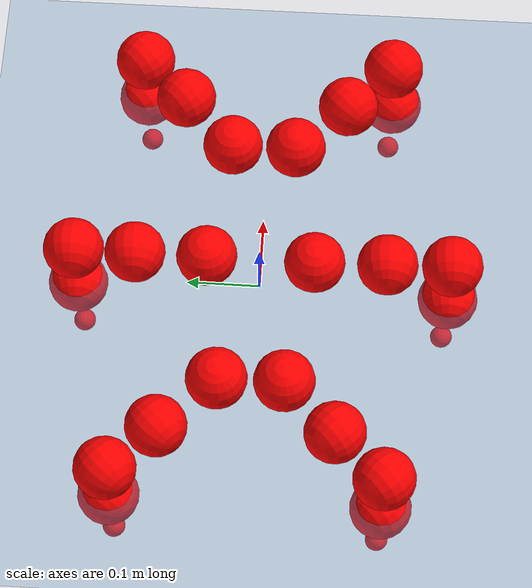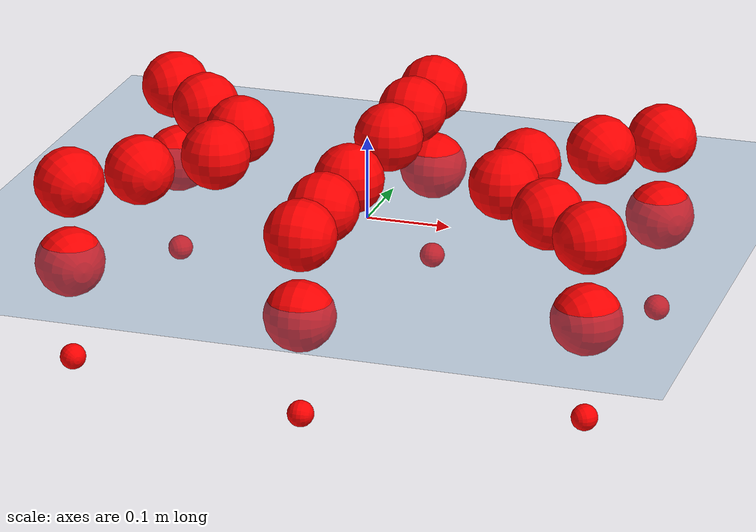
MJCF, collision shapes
<mujoco model="Golem">
  <compiler angle="radian" assetdir="assets" balanceinertia="true" inertiafromgeom="false"/>

  <option timestep="0.005" density="1.2" viscosity="2e-05"/>

  <size nkey="1"/>

  <visual>
    <quality shadowsize="8192"/>
    <map shadowclip="0.5"/>
  </visual>

  <default>
    <default class="/">
      <joint armature="0.01" damping="0.01" frictionloss="0.01"/>
      <geom contype="0" conaffinity="0" group="1" solref="-1000 -80"/>
      <site size="0.01 0.005 0.005" group="5"/>
      <general forcelimited="true" biastype="affine" gainprm="25" biasprm="0 -25 -0.5"/>
      <default class="visual">
        <geom type="mesh" group="2"/>
      </default>
      <default class="collision">
        <geom group="3"/>
      </default>
      <default class="foot">
        <geom size="0.01 0 0" condim="6" group="4" priority="1" solimp="0.015 1 0.01"/>
      </default>
      <default class="reward_collision_sphere">
        <geom group="5" rgba="1 0 0 1"/>
      </default>
    </default>
  </default>

  <asset>
    <texture type="skybox" colorspace="auto" name="//unnamed_texture_0" builtin="gradient" rgb1="0.95 0.95 0.95" rgb2="0.95 0.95 0.95" width="100" height="600"/>
    <texture type="2d" colorspace="auto" name="texplane" builtin="checker" rgb1="0.345 0.575 0.748" rgb2="0.345 0.575 0.748" markrgb="1 1 1" width="512" height="512"/>
    <material name="MatPlane" class="/" texture="texplane" texuniform="true" texrepeat="2 2" specular="0.9"/>
    <mesh name="body" class="/" file="body.stl" scale="0.001 0.001 0.001"/>
    <mesh name="coxa" class="/" file="coxa.stl" scale="0.001 0.001 0.001"/>
    <mesh name="femur" class="/" file="femur.stl" scale="0.001 0.001 0.001"/>
    <mesh name="tibia" class="/" file="tibia.stl" scale="0.001 0.001 0.001"/>
    <mesh name="tarsus" class="/" file="tarsus.stl" scale="0.001 0.001 0.001"/>
  </asset>

  <worldbody>
    <geom name="floor" class="/" size="100 100 0.125" type="plane" group="0" material="MatPlane"/>
    <light name="toplight_shadow" class="/" pos="0 0 5" dir="0.0990148 0.0990148 -0.990148" type="directional" ambient="0.04 0.04 0.04" diffuse="0.55 0.55 0.55" specular="0.12 0.12 0.12"/>
    <light name="toplight_fill" class="/" pos="0 0 5" dir="0.0990148 0.0990148 -0.990148" type="directional" castshadow="false" ambient="0.04 0.04 0.04" diffuse="0.3 0.3 0.3" specular="0.08 0.08 0.08"/>
    <body name="trunk" pos="0.00240022 0.000343252 -1.77647e-05" quat="1 5.56947e-05 1.97751e-05 -5.22359e-06">
      <inertial pos="-0.000555541 -0.000678937 -0.00209517" quat="0.999999 -0.000112825 0.000503766 -0.00102695" mass="3.95386" diaginertia="0.0166652 0.00323775 0.0220631"/>
      <joint name="//unnamed_joint_0" type="free"/>
      <geom name="//unnamed_geom_1" class="/" pos="0 0 0.075039" quat="1 0 0 0" type="mesh" rgba="0.9 0.9 0.9 1" mesh="body"/>
      <site name="imu" class="/" pos="0.155778 0.010326 0.112026" size="0.0102969"/>
      <camera name="track" class="/" pos="0 -1.60569 0" quat="0.707107 0.707107 0 0" mode="trackcom"/>
      <camera name="ego_camera" class="/" pos="0.144784 0 0.117248" quat="-0.5 -0.5 0.5 0.5"/>
      <body name="coxa_RR" pos="-0.199084 -0.0662578 0.0742642" quat="0.382595 3.89638e-05 7.19049e-05 -0.923916">
        <inertial pos="0.000308474 -0.00245768 0.00119907" quat="0.999985 0.00282571 -0.00252599 0.00398321" mass="0.209921" diaginertia="0.0167968 0.00326464 0.0216076"/>
        <joint name="coxa_joint_RR" class="/" pos="0 0 0" axis="-0.00271691 -0.00568769 -0.99998" range="-3.14232 3.13518" armature="0.00942423" damping="0" frictionloss="0.0102463"/>
        <geom name="//unnamed_geom_2" class="/" type="mesh" rgba="0.2 0.2 0.2 1" mesh="coxa"/>
        <geom name="//unnamed_geom_3" class="reward_collision_sphere" size="0.0411874" pos="-0.0334118 0 0"/>
        <body name="femur_RR" pos="0.0640295 0.000452609 -0.00169447" quat="0.499944 -0.499862 0.5 0.500194">
          <inertial pos="0.000364082 0.000776311 -9.68695e-06" quat="0.999986 0.00200045 -0.000812685 0.00475655" mass="0.217399" diaginertia="0.0170837 0.00327843 0.0227744"/>
          <joint name="femur_joint_RR" class="/" pos="0 0 0" axis="-0.000801867 0.00620323 -0.99998" range="-3.18005 3.11827" armature="0.0107997" damping="0.00379776" frictionloss="0.0112317"/>
          <geom name="//unnamed_geom_4" class="/" type="mesh" rgba="0.9 0.9 0.9 1" mesh="femur"/>
          <geom name="//unnamed_geom_5" class="reward_collision_sphere" size="0.0411874"/>
          <body name="tibia_RR" pos="-0.00174635 -0.0896944 0.00288018" quat="-0.000802167 0.999999 -0.000799616 -0.000184665">
            <inertial pos="-0.00199326 0.000913934 -0.000413597" quat="1 -0.000462713 -0.000477129 0.000258991" mass="0.221399" diaginertia="0.0169709 0.00336112 0.0218914"/>
            <joint name="tibia_joint_RR" class="/" pos="0 0 0" axis="0.00496174 -0.00664833 0.999966" stiffness="4.83653e-05" range="-3.15089 3.14847" armature="0.0104684" damping="0.00230308" frictionloss="0.010261"/>
            <geom name="//unnamed_geom_6" class="/" type="mesh" rgba="0.2 0.2 0.2 1" mesh="tibia"/>
            <geom name="//unnamed_geom_7" class="reward_collision_sphere" size="0.0411874"/>
            <body name="tarsus_RR" pos="0.0989983 0.00107841 0.0016149" quat="1 -2.07285e-05 -1.90823e-06 -2.14395e-05">
              <inertial pos="0.0698104 0.000669463 -0.000457962" quat="0.50332 0.498515 0.497013 0.501128" mass="0.216405" diaginertia="0.0168833 0.00330849 0.0219811"/>
              <joint name="tarsus_joint_RR" class="/" pos="0 0 0" axis="-0.000307091 -0.000202011 1" range="-3.17822 3.15256" armature="0.0108122" damping="0.0384746" frictionloss="0.010484"/>
              <geom name="//unnamed_geom_8" class="/" type="mesh" rgba="0.9 0.9 0.9 1" mesh="tarsus"/>
              <geom name="foot_1" class="foot" size="0.0101787" pos="0.124737 0 0" quat="0 -0.707107 0 0.707107"/>
              <geom name="//unnamed_geom_10" class="reward_collision_sphere" size="0.0411874"/>
              <geom name="//unnamed_geom_11" class="reward_collision_sphere" size="0.0154453" pos="0.119726 0 0"/>
              <site name="foot_1" class="foot" pos="0.124737 0 0" quat="0 -0.707107 0 0.707107" size="0.0102969"/>
            </body>
          </body>
        </body>
      </body>
      <body name="coxa_RM" pos="-0.000807202 -0.107918 0.0760446" quat="0.707287 0.000214663 -3.2204e-05 -0.706926">
        <inertial pos="0.00137844 0.000103787 0.00112568" quat="0.999997 -0.00115662 0.00184532 0.00137614" mass="0.21948" diaginertia="0.01711 0.00322468 0.0223403"/>
        <joint name="coxa_joint_RM" class="/" pos="0 0 0" axis="0.000308333 3.24828e-05 -1" range="-3.12094 3.13057" armature="0.0104354" damping="0.00318902" frictionloss="0.00897334"/>
        <geom name="//unnamed_geom_12" class="/" type="mesh" rgba="0.2 0.2 0.2 1" mesh="coxa"/>
        <geom name="//unnamed_geom_13" class="reward_collision_sphere" size="0.0411874" pos="-0.0334118 0 0"/>
        <body name="femur_RM" pos="0.0643412 0.00128342 0.00105089" quat="0.49905 -0.500034 0.500383 0.500532">
          <inertial pos="-0.000871699 0.000532273 -0.000137867" quat="0.999988 -0.00268755 0.00135765 0.00380399" mass="0.224019" diaginertia="0.0176565 0.00336677 0.0227575"/>
          <joint name="femur_joint_RM" class="/" pos="0 0 0" axis="-2.66211e-05 0.00116506 -0.999999" range="-3.13003 3.13426" armature="0.010504" damping="0.0152146" frictionloss="0.0103469"/>
          <geom name="//unnamed_geom_14" class="/" type="mesh" rgba="0.9 0.9 0.9 1" mesh="femur"/>
          <geom name="//unnamed_geom_15" class="reward_collision_sphere" size="0.0411874"/>
          <body name="tibia_RM" pos="-0.000178083 -0.0868678 0.00205508" quat="0.000121075 1 -4.28963e-05 -2.42163e-05">
            <inertial pos="0.00100321 -0.00266091 0.000329494" quat="0.999944 0.00850973 -0.00232389 -0.00590094" mass="0.215269" diaginertia="0.0173771 0.00348041 0.0224922"/>
            <joint name="tibia_joint_RM" class="/" pos="0 0 0" axis="0.00323275 0.000405502 0.999995" range="-3.18243 3.19034" armature="0.0102925" damping="0.0149361" frictionloss="0.00985047"/>
            <geom name="//unnamed_geom_16" class="/" type="mesh" rgba="0.2 0.2 0.2 1" mesh="tibia"/>
            <geom name="//unnamed_geom_17" class="reward_collision_sphere" size="0.0411874"/>
            <body name="tarsus_RM" pos="0.0968962 0.000465926 0.00125881" quat="1 9.95053e-06 -3.32064e-05 3.71192e-05">
              <inertial pos="0.0658223 -0.000315304 0.00166647" quat="0.49149 0.498894 0.508774 0.500691" mass="0.225426" diaginertia="0.016726 0.0033257 0.0217688"/>
              <joint name="tarsus_joint_RM" class="/" pos="0 0 0" axis="0.00141124 -0.00170779 0.999998" range="-3.12665 3.15868" armature="0.0099805" damping="0.00352109" frictionloss="0.010469"/>
              <geom name="//unnamed_geom_18" class="/" type="mesh" rgba="0.9 0.9 0.9 1" mesh="tarsus"/>
              <geom name="foot_2" class="foot" size="0.00993113" pos="0.124737 0 0" quat="0 -0.707107 0 0.707107"/>
              <geom name="//unnamed_geom_20" class="reward_collision_sphere" size="0.0411874"/>
              <geom name="//unnamed_geom_21" class="reward_collision_sphere" size="0.0154453" pos="0.119726 0 0"/>
              <site name="foot_2" class="foot" pos="0.124737 0 0" quat="0 -0.707107 0 0.707107" size="0.0102969"/>
            </body>
          </body>
        </body>
      </body>
      <body name="coxa_RF" pos="0.198186 -0.0643221 0.0776042" quat="0.923908 6.87677e-05 4.98617e-05 -0.382614">
        <inertial pos="0.00109774 9.2995e-05 0.00074113" quat="1 0.00031345 -0.000411236 -5.27477e-05" mass="0.217603" diaginertia="0.0170828 0.00328908 0.0223097"/>
        <joint name="coxa_joint_RF" class="/" pos="0 0 0" axis="0.00141966 -0.00419278 -0.99999" range="-3.13181 3.11949" armature="0.0112626" damping="0.00685036" frictionloss="0.0105814"/>
        <geom name="//unnamed_geom_22" class="/" type="mesh" rgba="0.2 0.2 0.2 1" mesh="coxa"/>
        <geom name="//unnamed_geom_23" class="reward_collision_sphere" size="0.0411874" pos="-0.0334118 0 0"/>
        <body name="femur_RF" pos="0.0660828 0.000948549 -0.00215369" quat="0.500072 -0.500054 0.50024 0.499634">
          <inertial pos="-0.00060862 -0.000882552 0.000550002" quat="0.999995 -0.00114108 0.000228077 -0.00310472" mass="0.219237" diaginertia="0.0171341 0.00333275 0.0229007"/>
          <joint name="femur_joint_RF" class="/" pos="0 0 0" axis="4.87622e-05 -0.00020413 -1" range="-3.18869 3.11718" armature="0.00920708" damping="0.0114451" frictionloss="0.0110719"/>
          <geom name="//unnamed_geom_24" class="/" type="mesh" rgba="0.9 0.9 0.9 1" mesh="femur"/>
          <geom name="//unnamed_geom_25" class="reward_collision_sphere" size="0.0411874"/>
          <body name="tibia_RF" pos="-0.00214665 -0.0880326 0.00209722" quat="0.000226832 1 -7.81194e-05 2.2227e-05">
            <inertial pos="-0.00236977 -0.000326766 0.000796752" quat="1 2.5285e-05 2.43418e-05 0.000249126" mass="0.222359" diaginertia="0.0168963 0.00332675 0.0220958"/>
            <joint name="tibia_joint_RF" class="/" pos="0 0 0" axis="-0.0097566 -0.00463221 0.999942" range="-3.11959 3.08866" armature="0.0107287" damping="0.0141443" frictionloss="0.0102443"/>
            <geom name="//unnamed_geom_26" class="/" type="mesh" rgba="0.2 0.2 0.2 1" mesh="tibia"/>
            <geom name="//unnamed_geom_27" class="reward_collision_sphere" size="0.0411874"/>
            <body name="tarsus_RF" pos="0.0963322 0.00205231 0.00234521" quat="0.999999 -0.000534705 0.00109209 -9.15256e-05">
              <inertial pos="0.0668799 -0.000638108 -0.000131755" quat="0.500808 0.49843 0.500758 0.5" mass="0.217462" diaginertia="0.0170529 0.00336855 0.0222645"/>
              <joint name="tarsus_joint_RF" class="/" pos="0 0 0" axis="0.00250402 0.00576834 0.99998" range="-3.12336 3.15715" armature="0.0105026" damping="0.00393209" frictionloss="0.0104022"/>
              <geom name="//unnamed_geom_28" class="/" type="mesh" rgba="0.9 0.9 0.9 1" mesh="tarsus"/>
              <geom name="foot_3" class="foot" size="0.0107599" pos="0.124737 0 0" quat="0 -0.707107 0 0.707107"/>
              <geom name="//unnamed_geom_30" class="reward_collision_sphere" size="0.0411874"/>
              <geom name="//unnamed_geom_31" class="reward_collision_sphere" size="0.0154453" pos="0.119726 0 0"/>
              <site name="foot_3" class="foot" pos="0.124737 0 0" quat="0 -0.707107 0 0.707107" size="0.0102969"/>
            </body>
          </body>
        </body>
      </body>
      <body name="coxa_LR" pos="-0.200232 0.0699133 0.074341" quat="0.382652 -4.25435e-05 -9.90368e-05 0.923893">
        <inertial pos="-0.00212286 -0.0005628 -0.00179587" quat="0.999923 0.00661901 -0.0104157 -0.00103431" mass="0.219028" diaginertia="0.0174327 0.00349368 0.0221975"/>
        <joint name="coxa_joint_LR" class="/" pos="0 0 0" axis="0.0103745 -0.0110806 -0.999885" range="-3.11837 3.14092" armature="0.0101475" damping="0.0190332" frictionloss="0.00945005"/>
        <geom name="//unnamed_geom_32" class="/" type="mesh" rgba="0.2 0.2 0.2 1" mesh="coxa"/>
        <geom name="//unnamed_geom_33" class="reward_collision_sphere" size="0.0411874" pos="-0.0334118 0 0"/>
        <body name="femur_LR" pos="0.0685748 -0.00248559 -0.00269969" quat="0.499913 -0.500065 0.499973 0.500049">
          <inertial pos="0.000623447 0.000270715 -0.000597239" quat="1 -0.000427014 6.22288e-05 8.31562e-05" mass="0.218647" diaginertia="0.0170627 0.00340602 0.0220103"/>
          <joint name="femur_joint_LR" class="/" pos="0 0 0" axis="0.000884028 -0.00349614 0.999993" range="-3.16088 3.12796" armature="0.0098978" damping="0.0112756" frictionloss="0.00899458"/>
          <geom name="//unnamed_geom_34" class="/" type="mesh" rgba="0.9 0.9 0.9 1" mesh="femur"/>
          <geom name="//unnamed_geom_35" class="reward_collision_sphere" size="0.0411874"/>
          <body name="tibia_LR" pos="-0.000478109 -0.0870753 0.000860241" quat="0.000890373 0.999999 -0.000271381 0.000694038">
            <inertial pos="0.000164872 0.000720791 7.32132e-05" quat="0.999999 0.00020936 -0.000785123 -0.00129134" mass="0.214857" diaginertia="0.0171897 0.00336798 0.0220314"/>
            <joint name="tibia_joint_LR" class="/" pos="0 0 0" axis="0.000688647 -0.00229362 -0.999997" range="-3.13704 3.10698" armature="0.0100565" damping="0.0105391" frictionloss="0.0105745"/>
            <geom name="//unnamed_geom_36" class="/" type="mesh" rgba="0.2 0.2 0.2 1" mesh="tibia"/>
            <geom name="//unnamed_geom_37" class="reward_collision_sphere" size="0.0411874"/>
            <body name="tarsus_LR" pos="0.0971475 -0.00053934 0.00245035" quat="0.999999 -0.000781781 -0.000411564 -0.000889209">
              <inertial pos="0.0702692 0.000391024 -0.00235657" quat="0.49926 0.500907 0.499901 0.499931" mass="0.213746" diaginertia="0.0168734 0.0032422 0.0217237"/>
              <joint name="tarsus_joint_LR" class="/" pos="0 0 0" axis="0.00522554 0.0038939 -0.999979" stiffness="0.000136693" range="-3.17692 3.10153" armature="0.0105102" damping="0" frictionloss="0.00979651"/>
              <geom name="//unnamed_geom_38" class="/" type="mesh" rgba="0.9 0.9 0.9 1" mesh="tarsus"/>
              <geom name="foot_4" class="foot" size="0.0103874" pos="0.124737 0 0" quat="0.707107 0 -0.707107 0"/>
              <geom name="//unnamed_geom_40" class="reward_collision_sphere" size="0.0411874"/>
              <geom name="//unnamed_geom_41" class="reward_collision_sphere" size="0.0154453" pos="0.119726 0 0"/>
              <site name="foot_4" class="foot" pos="0.124737 0 0" quat="0.707107 0 -0.707107 0" size="0.0102969"/>
            </body>
          </body>
        </body>
      </body>
      <body name="coxa_LM" pos="0.00119133 0.104095 0.0766526" quat="0.707097 -2.90306e-05 -1.25381e-05 0.707117">
        <inertial pos="-0.000791055 0.000918497 0.000969922" quat="0.999994 0.00067733 0.00237848 -0.00241116" mass="0.220813" diaginertia="0.0173348 0.00337957 0.0224163"/>
        <joint name="coxa_joint_LM" class="/" pos="0 0 0" axis="-0.000794607 0.00122334 -0.999999" range="-3.10227 3.14926" armature="0.0100883" damping="0.00448987" frictionloss="0.0111267"/>
        <geom name="//unnamed_geom_42" class="/" type="mesh" rgba="0.2 0.2 0.2 1" mesh="coxa"/>
        <geom name="//unnamed_geom_43" class="reward_collision_sphere" size="0.0411874" pos="-0.0334118 0 0"/>
        <body name="femur_LM" pos="0.063131 0.000374896 0.000997537" quat="0.500136 -0.500004 0.499695 0.500164">
          <inertial pos="-0.000474839 -0.00208214 0.00254598" quat="0.999929 0.00776364 -0.0072027 -0.00549368" mass="0.215452" diaginertia="0.0168933 0.00318722 0.0216314"/>
          <joint name="femur_joint_LM" class="/" pos="0 0 0" axis="-0.00664825 0.000152172 0.999978" range="-3.13858 3.10599" armature="0.0104088" damping="0.00554077" frictionloss="0.0102801"/>
          <geom name="//unnamed_geom_44" class="/" type="mesh" rgba="0.9 0.9 0.9 1" mesh="femur"/>
          <geom name="//unnamed_geom_45" class="reward_collision_sphere" size="0.0411874"/>
          <body name="tibia_LM" pos="0.000803976 -0.0829634 -0.00149537" quat="0.000556245 0.999999 -0.000227743 0.00122925">
            <inertial pos="-0.000677115 -0.0033045 -0.00100036" quat="0.999992 -0.00175259 0.00320306 -0.00136559" mass="0.221068" diaginertia="0.0169331 0.00342773 0.0218957"/>
            <joint name="tibia_joint_LM" class="/" pos="0 0 0" axis="0.00203036 0.00480828 -0.999986" range="-3.1459 3.11881" armature="0.0113192" damping="0" frictionloss="0.0103184"/>
            <geom name="//unnamed_geom_46" class="/" type="mesh" rgba="0.2 0.2 0.2 1" mesh="tibia"/>
            <geom name="//unnamed_geom_47" class="reward_collision_sphere" size="0.0411874"/>
            <body name="tarsus_LM" pos="0.100445 0.000580789 7.08377e-05" quat="0.999999 0.00047682 -0.000723813 -0.000948693">
              <inertial pos="0.0660566 0.00041394 9.17486e-05" quat="0.500136 0.500062 0.499958 0.499844" mass="0.213824" diaginertia="0.016761 0.00326123 0.0218012"/>
              <joint name="tarsus_joint_LM" class="/" pos="0 0 0" axis="-1.90001e-05 -0.00127504 -0.999999" range="-3.08827 3.1204" armature="0.0113751" damping="0" frictionloss="0.0098912"/>
              <geom name="//unnamed_geom_48" class="/" type="mesh" rgba="0.9 0.9 0.9 1" mesh="tarsus"/>
              <geom name="foot_5" class="foot" size="0.010046" pos="0.124737 0 0" quat="0.707107 0 -0.707107 0"/>
              <geom name="//unnamed_geom_50" class="reward_collision_sphere" size="0.0411874"/>
              <geom name="//unnamed_geom_51" class="reward_collision_sphere" size="0.0154453" pos="0.119726 0 0"/>
              <site name="foot_5" class="foot" pos="0.124737 0 0" quat="0.707107 0 -0.707107 0" size="0.0102969"/>
            </body>
          </body>
        </body>
      </body>
      <body name="coxa_LF" pos="0.200666 0.0697751 0.0724442" quat="0.923901 -8.44943e-06 3.54108e-05 0.382631">
        <inertial pos="-0.000158512 0.000634139 0.00107545" quat="0.999988 -0.000327824 0.00462345 -0.00178819" mass="0.211062" diaginertia="0.0167236 0.00321965 0.0214977"/>
        <joint name="coxa_joint_LF" class="/" pos="0 0 0" axis="-0.00327558 0.00316652 -0.99999" range="-3.12831 3.18839" armature="0.0113013" damping="0.00208775" frictionloss="0.00985203"/>
        <geom name="//unnamed_geom_52" class="/" type="mesh" rgba="0.2 0.2 0.2 1" mesh="coxa"/>
        <geom name="//unnamed_geom_53" class="reward_collision_sphere" size="0.0411874" pos="-0.0334118 0 0"/>
        <body name="femur_LF" pos="0.0665557 -0.00168882 0.000298352" quat="0.4995 -0.500375 0.499367 0.500757">
          <inertial pos="0.00246357 0.000388869 0.000504406" quat="0.999987 -0.00295275 -0.000604333 0.0040183" mass="0.222575" diaginertia="0.0173666 0.00338982 0.0222621"/>
          <joint name="femur_joint_LF" class="/" pos="0 0 0" axis="-0.00209726 -0.00026413 0.999998" stiffness="6.65068e-05" range="-3.12838 3.12643" armature="0.0113466" damping="0.0123542" frictionloss="0.0107918"/>
          <geom name="//unnamed_geom_54" class="/" type="mesh" rgba="0.9 0.9 0.9 1" mesh="femur"/>
          <geom name="//unnamed_geom_55" class="reward_collision_sphere" size="0.0411874"/>
          <body name="tibia_LF" pos="0.000448722 -0.0849436 0.00173516" quat="-0.000153181 1 -0.000327176 -5.22085e-05">
            <inertial pos="0.000120408 0.0015233 -0.000632875" quat="0.999987 -0.00492722 0.00153249 0.000403434" mass="0.21971" diaginertia="0.0173721 0.00335977 0.0222381"/>
            <joint name="tibia_joint_LF" class="/" pos="0 0 0" axis="-0.0026605 0.00101462 -0.999996" range="-3.13712 3.14891" armature="0.010001" damping="0" frictionloss="0.0101919"/>
            <geom name="//unnamed_geom_56" class="/" type="mesh" rgba="0.2 0.2 0.2 1" mesh="tibia"/>
            <geom name="//unnamed_geom_57" class="reward_collision_sphere" size="0.0411874"/>
            <body name="tarsus_LF" pos="0.0980878 0.000297433 -0.000374923" quat="0.999999 0.000284852 -0.000155137 -0.00113849">
              <inertial pos="0.0688187 0.000942642 0.00040501" quat="0.498906 0.501614 0.503693 0.495752" mass="0.215487" diaginertia="0.0170279 0.00335948 0.021803"/>
              <joint name="tarsus_joint_LF" class="/" pos="0 0 0" axis="0.00160415 -0.00224811 -0.999996" stiffness="0.0302308" range="-3.16774 3.13042" armature="0.0102487" damping="0.0307468" frictionloss="0.0100185"/>
              <geom name="//unnamed_geom_58" class="/" type="mesh" rgba="0.9 0.9 0.9 1" mesh="tarsus"/>
              <geom name="foot_6" class="foot" size="0.0104586" pos="0.124737 0 0" quat="0.707107 0 -0.707107 0"/>
              <geom name="//unnamed_geom_60" class="reward_collision_sphere" size="0.0411874"/>
              <geom name="//unnamed_geom_61" class="reward_collision_sphere" size="0.0154453" pos="0.119726 0 0"/>
              <site name="foot_6" class="foot" pos="0.124737 0 0" quat="0.707107 0 -0.707107 0" size="0.0102969"/>
            </body>
          </body>
        </body>
      </body>
    </body>
  </worldbody>

  <contact>
    <pair class="/" geom1="floor" geom2="foot_1" name="//unnamed_contact_0"/>
    <pair class="/" geom1="floor" geom2="foot_2" name="//unnamed_contact_1"/>
    <pair class="/" geom1="floor" geom2="foot_3" name="//unnamed_contact_2"/>
    <pair class="/" geom1="floor" geom2="foot_4" name="//unnamed_contact_3"/>
    <pair class="/" geom1="floor" geom2="foot_5" name="//unnamed_contact_4"/>
    <pair class="/" geom1="floor" geom2="foot_6" name="//unnamed_contact_5"/>
  </contact>

  <actuator>
    <general name="coxa_joint_RR" class="/" joint="coxa_joint_RR" forcerange="-7.61475 7.61475" gainprm="24.7134" biasprm="0 -24.7134 -0.553959"/>
    <general name="femur_joint_RR" class="/" joint="femur_joint_RR" forcerange="-7.51296 7.51296" gainprm="24.7134" biasprm="0 -24.7134 -0.553959"/>
    <general name="tibia_joint_RR" class="/" joint="tibia_joint_RR" forcerange="-7.44187 7.44187" gainprm="24.7134" biasprm="0 -24.7134 -0.553959"/>
    <general name="tarsus_joint_RR" class="/" joint="tarsus_joint_RR" forcerange="-7.91561 7.91561" gainprm="24.7134" biasprm="0 -24.7134 -0.553959"/>
    <general name="coxa_joint_RM" class="/" joint="coxa_joint_RM" forcerange="-6.81885 6.81885" gainprm="24.7134" biasprm="0 -24.7134 -0.553959"/>
    <general name="femur_joint_RM" class="/" joint="femur_joint_RM" forcerange="-7.70752 7.70752" gainprm="24.7134" biasprm="0 -24.7134 -0.553959"/>
    <general name="tibia_joint_RM" class="/" joint="tibia_joint_RM" forcerange="-7.37394 7.37394" gainprm="24.7134" biasprm="0 -24.7134 -0.553959"/>
    <general name="tarsus_joint_RM" class="/" joint="tarsus_joint_RM" forcerange="-7.63693 7.63693" gainprm="24.7134" biasprm="0 -24.7134 -0.553959"/>
    <general name="coxa_joint_RF" class="/" joint="coxa_joint_RF" forcerange="-6.86041 6.86041" gainprm="24.7134" biasprm="0 -24.7134 -0.553959"/>
    <general name="femur_joint_RF" class="/" joint="femur_joint_RF" forcerange="-7.49894 7.49894" gainprm="24.7134" biasprm="0 -24.7134 -0.553959"/>
    <general name="tibia_joint_RF" class="/" joint="tibia_joint_RF" forcerange="-6.8037 6.8037" gainprm="24.7134" biasprm="0 -24.7134 -0.553959"/>
    <general name="tarsus_joint_RF" class="/" joint="tarsus_joint_RF" forcerange="-7.47909 7.47909" gainprm="24.7134" biasprm="0 -24.7134 -0.553959"/>
    <general name="coxa_joint_LR" class="/" joint="coxa_joint_LR" forcerange="-7.52773 7.52773" gainprm="24.7134" biasprm="0 -24.7134 -0.553959"/>
    <general name="femur_joint_LR" class="/" joint="femur_joint_LR" forcerange="-7.64107 7.64107" gainprm="24.7134" biasprm="0 -24.7134 -0.553959"/>
    <general name="tibia_joint_LR" class="/" joint="tibia_joint_LR" forcerange="-7.39646 7.39646" gainprm="24.7134" biasprm="0 -24.7134 -0.553959"/>
    <general name="tarsus_joint_LR" class="/" joint="tarsus_joint_LR" forcerange="-7.24959 7.24959" gainprm="24.7134" biasprm="0 -24.7134 -0.553959"/>
    <general name="coxa_joint_LM" class="/" joint="coxa_joint_LM" forcerange="-8.01926 8.01926" gainprm="24.7134" biasprm="0 -24.7134 -0.553959"/>
    <general name="femur_joint_LM" class="/" joint="femur_joint_LM" forcerange="-7.5357 7.5357" gainprm="24.7134" biasprm="0 -24.7134 -0.553959"/>
    <general name="tibia_joint_LM" class="/" joint="tibia_joint_LM" forcerange="-7.38479 7.38479" gainprm="24.7134" biasprm="0 -24.7134 -0.553959"/>
    <general name="tarsus_joint_LM" class="/" joint="tarsus_joint_LM" forcerange="-7.65247 7.65247" gainprm="24.7134" biasprm="0 -24.7134 -0.553959"/>
    <general name="coxa_joint_LF" class="/" joint="coxa_joint_LF" forcerange="-6.79653 6.79653" gainprm="24.7134" biasprm="0 -24.7134 -0.553959"/>
    <general name="femur_joint_LF" class="/" joint="femur_joint_LF" forcerange="-7.49285 7.49285" gainprm="24.7134" biasprm="0 -24.7134 -0.553959"/>
    <general name="tibia_joint_LF" class="/" joint="tibia_joint_LF" forcerange="-7.28439 7.28439" gainprm="24.7134" biasprm="0 -24.7134 -0.553959"/>
    <general name="tarsus_joint_LF" class="/" joint="tarsus_joint_LF" forcerange="-7.48643 7.48643" gainprm="24.7134" biasprm="0 -24.7134 -0.553959"/>
  </actuator>

  <sensor>
    <gyro site="imu" name="imu_angular_velocity"/>
    <velocimeter site="imu" name="imu_linear_velocity"/>
    <framelinvel objtype="site" objname="foot_1" name="foot_1_global_linear_velocity"/>
    <framelinvel objtype="site" objname="foot_2" name="foot_2_global_linear_velocity"/>
    <framelinvel objtype="site" objname="foot_3" name="foot_3_global_linear_velocity"/>
    <framelinvel objtype="site" objname="foot_4" name="foot_4_global_linear_velocity"/>
    <framelinvel objtype="site" objname="foot_5" name="foot_5_global_linear_velocity"/>
    <framelinvel objtype="site" objname="foot_6" name="foot_6_global_linear_velocity"/>
  </sensor>

  <keyframe>
    <key name="home" qpos="0 0 0.1457 1 0 0 0 0 0 0 0 0 0 0 0 0 0 0 0 0 0 0 0 0 0 0 0 0 0 0 0"/>
  </keyframe>
</mujoco>
